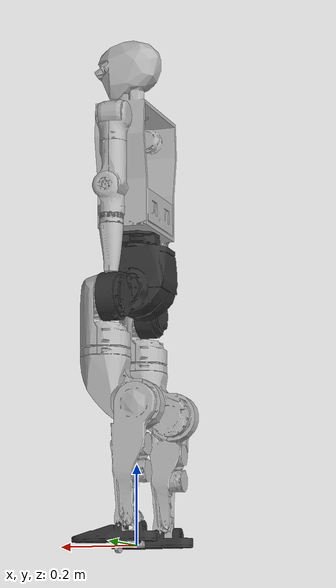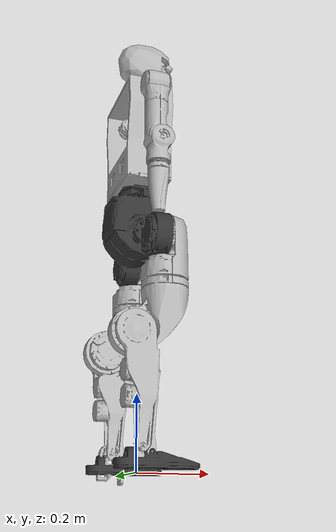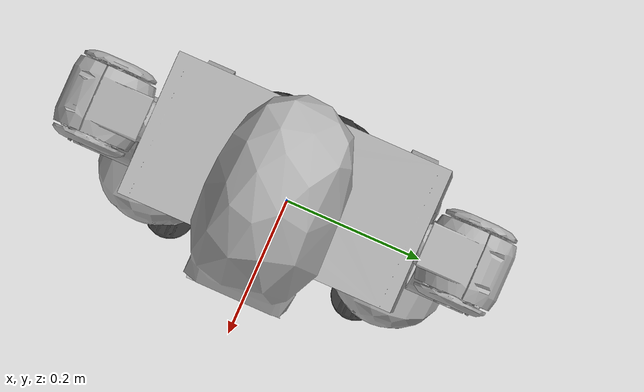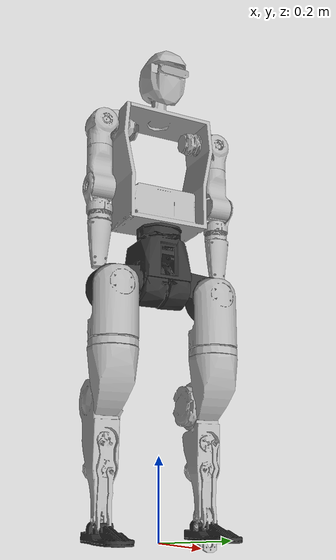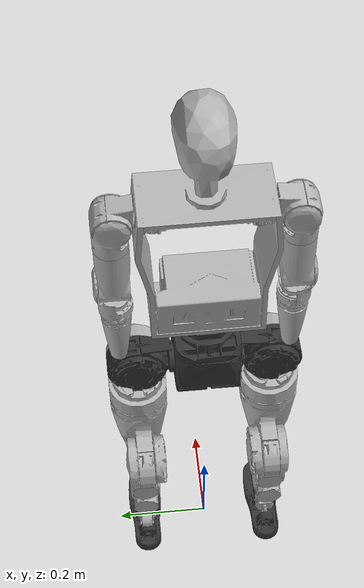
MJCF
<mujoco model="own">
  <!-- Generated from own.urdf by adapting the G1 23DOF URDF->MJCF mapping. -->
  <!-- Visual meshes use compiler meshdir="meshes" and basename STL references from own.urdf. -->
  <!-- Collision geoms are G1-style simplified approximations; tune foot/hand/torso collisions against the actual own meshes. -->
  <!-- IMU sites/sensors are virtual placeholders at inertial centers; D435/Mid360 frames are intentionally not included. -->
  <compiler angle="radian" meshdir="meshes" autolimits="true"/>
  <default>
    <default class="own">
      <default class="visual">
        <geom type="mesh" density="0" material="silver" contype="0" conaffinity="0" group="2"/>
      </default>
      <default class="collision">
        <geom type="capsule" priority="1" condim="6" group="3"/>
        <default class="foot_capsule">
          <geom size="0.01"/>
        </default>
      </default>
      <site rgba="1 0 0 1" group="5"/>
    </default>
  </default>
  <asset>
    <material name="silver" rgba="0.7 0.7 0.7 1"/>
    <material name="black" rgba="0.2 0.2 0.2 1"/>
    <mesh name="pelvis" file="pelvis.STL"/>
    <mesh name="left_hip_pitch_link" file="left_hip_pitch_link.STL"/>
    <mesh name="left_hip_roll_link" file="left_hip_roll_link.STL"/>
    <mesh name="left_hip_yaw_link" file="left_hip_yaw_link.STL"/>
    <mesh name="left_knee_link" file="left_knee_link.STL"/>
    <mesh name="left_ankle_pitch_link" file="left_ankle_pitch_link.STL"/>
    <mesh name="left_ankle_roll_link" file="left_ankle_roll_link.STL"/>
    <mesh name="right_hip_pitch_link" file="right_hip_pitch_link.STL"/>
    <mesh name="right_hip_roll_link" file="right_hip_roll_link.STL"/>
    <mesh name="right_hip_yaw_link" file="right_hip_yaw_link.STL"/>
    <mesh name="right_knee_link" file="right_knee_link.STL"/>
    <mesh name="right_ankle_pitch_link" file="right_ankle_pitch_link.STL"/>
    <mesh name="right_ankle_roll_link" file="right_ankle_roll_link.STL"/>
    <mesh name="torso_link" file="torso_link.STL"/>
    <mesh name="left_shoulder_pitch_link" file="left_shoulder_pitch_link.STL"/>
    <mesh name="left_shoulder_roll_link" file="left_shoulder_roll_link.STL"/>
    <mesh name="left_shoulder_yaw_link" file="left_shoulder_yaw_link.STL"/>
    <mesh name="left_elbow_link" file="left_elbow_link.STL"/>
    <mesh name="left_wrist_roll_link" file="left_wrist_roll_link.STL"/>
    <mesh name="right_shoulder_pitch_link" file="right_shoulder_pitch_link.STL"/>
    <mesh name="right_shoulder_roll_link" file="right_shoulder_roll_link.STL"/>
    <mesh name="right_shoulder_yaw_link" file="right_shoulder_yaw_link.STL"/>
    <mesh name="right_elbow_link" file="right_elbow_link.STL"/>
    <mesh name="right_wrist_roll_link" file="right_wrist_roll_link.STL"/>
  </asset>
  <worldbody>
    <body name="pelvis" pos="0 0 0.7865" childclass="own">
      <light pos="0 0 2" mode="trackcom"/>
      <camera name="tracking" pos="1.734 -1.135 .35" xyaxes="0.552 0.834 -0.000 -0.170 0.112 0.979" mode="trackcom"/>
      <inertial pos="-0.00427076 5.207e-05 0" mass="5.49442153" fullinertia="0.02997507 0.02896373 0.01655055 7.69e-06 -0.00031011 1.557e-05"/>
      <freejoint name="floating_base_joint"/>
      <geom class="visual" mesh="pelvis" material="black"/>
      <geom name="pelvis_collision" class="collision" type="sphere" size="0.075" pos="0 0 -0.08"/>
      <site name="imu_in_pelvis" size="0.01" pos="-0.00427076 5.207e-05 0"/>
      <body name="left_hip_pitch_link" pos="0 0.062 -0.15085">
        <inertial pos="0.01153899 0.07374699 -0.02932665" mass="1.47644302" fullinertia="0.00353864 0.00221931 0.00245227 -3.459e-05 1.793e-05 0.00019398"/>
        <joint name="left_hip_pitch_joint" axis="0 1 0" range="-2.5307 2.8798"/>
        <geom class="visual" mesh="left_hip_pitch_link" material="black"/>
        <body name="left_hip_roll_link" pos="0.0355 0.078 -0.03229">
          <inertial pos="0.00625979 -6.5e-06 -0.0809733" mass="1.62413918" fullinertia="0.00597832 0.00576591 0.00314956 7.2e-07 -0.00100288 1.63e-06"/>
          <joint name="left_hip_roll_joint" axis="1 0 0" range="-0.5236 2.9671"/>
          <geom class="visual" mesh="left_hip_roll_link"/>
          <geom name="left_hip_collision" class="collision" size="0.06" fromto="0.02 0 0 0.02 0 -0.09"/>
          <body name="left_hip_yaw_link" pos="-0.004 0 -0.13335">
            <inertial pos="-0.04042976 -0.00635084 -0.09136575" mass="2.95164923" fullinertia="0.01252565 0.0180434 0.01042354 -0.00083368 -0.00547393 -0.00086964"/>
            <joint name="left_hip_yaw_joint" axis="0 0 1" range="-2.7576 2.7576"/>
            <geom class="visual" mesh="left_hip_yaw_link"/>
            <geom name="left_thigh_collision" class="collision" size="0.055" fromto="0 0 -0.03 -0.075 0 -0.135"/>
            <body name="left_knee_link" pos="-0.085 0.0085 -0.138">
              <inertial pos="0.02654434 -0.00246448 -0.12429241" mass="1.24652783" fullinertia="0.01088731 0.01119644 0.00124056 0.00014242 0.0010584 -0.00076881"/>
              <joint name="left_knee_joint" axis="0 1 0" range="-0.087267 2.8798"/>
              <geom class="visual" mesh="left_knee_link"/>
              <geom name="left_shin_collision" class="collision" size="0.043" fromto="0.01 0 0 0.018 0 -0.23"/>
              <geom name="left_linkage_brace_collision" class="collision" size="0.028" fromto="0.012 0 -0.21 0.018 0 -0.28"/>
              <body name="left_ankle_pitch_link" pos="0.02 -0.0085 -0.28">
                <inertial pos="-0.00689323 0 -0.01226804" mass="0.0911292" fullinertia="1.243e-05 2.297e-05 1.252e-05 0 -3.93e-06 0"/>
                <joint name="left_ankle_pitch_joint" axis="0 1 0" range="-0.87267 0.5236"/>
                <geom class="visual" mesh="left_ankle_pitch_link"/>
                <body name="left_ankle_roll_link" pos="-0.022 0 -0.02">
                  <inertial pos="0.04631624 0 -0.01265419" mass="0.3881275" fullinertia="0.00015892 0.00114243 0.0012145 0 6.735e-05 0"/>
                  <joint name="left_ankle_roll_joint" axis="1 0 0" range="-0.2618 0.2618"/>
                  <geom class="visual" mesh="left_ankle_roll_link" material="black"/>
                  <geom name="left_foot1_collision" class="foot_capsule" fromto="0.14 -0.026 -0.02 0.082 -0.026 -0.02"/>
                  <geom name="left_foot2_collision" class="foot_capsule" fromto="-0.026 -0.018 -0.02 0.155 -0.018 -0.02"/>
                  <geom name="left_foot3_collision" class="foot_capsule" fromto="-0.034 -0.01 -0.02 0.162 -0.01 -0.02"/>
                  <geom name="left_foot4_collision" class="foot_capsule" fromto="-0.036 0 -0.02 0.164 0 -0.02"/>
                  <geom name="left_foot5_collision" class="foot_capsule" fromto="-0.034 0.01 -0.02 0.162 0.01 -0.02"/>
                  <geom name="left_foot6_collision" class="foot_capsule" fromto="-0.026 0.018 -0.02 0.155 0.018 -0.02"/>
                  <geom name="left_foot7_collision" class="foot_capsule" fromto="0.14 0.026 -0.02 0.082 0.026 -0.02"/>
                  <site name="left_foot" rgba="1 0 0 1" pos="0.064 0 -0.03" size="0.01"/>
                </body>
              </body>
            </body>
          </body>
        </body>
      </body>
      <body name="right_hip_pitch_link" pos="0 -0.062 -0.15085">
        <inertial pos="0.0115158 -0.07355332 -0.02937773" mass="1.47720495" fullinertia="0.00354649 0.00222172 0.00245789 4.046e-05 1.542e-05 -0.00019697"/>
        <joint name="right_hip_pitch_joint" axis="0 1 0" range="-2.5307 2.8798"/>
        <geom class="visual" mesh="right_hip_pitch_link" material="black"/>
        <body name="right_hip_roll_link" pos="0.0355 -0.078 -0.03229">
          <inertial pos="0.00551011 -9.21e-06 -0.08517121" mass="1.75165413" fullinertia="0.00644938 0.00626478 0.00331721 4.3e-07 -0.0010739 1.36e-06"/>
          <joint name="right_hip_roll_joint" axis="1 0 0" range="-2.9671 0.5236"/>
          <geom class="visual" mesh="right_hip_roll_link"/>
          <geom name="right_hip_collision" class="collision" size="0.06" fromto="0.02 0 0 0.02 0 -0.09"/>
          <body name="right_hip_yaw_link" pos="-0.004 0 -0.13335">
            <inertial pos="-0.04226427 0.00647868 -0.0951379" mass="2.82481692" fullinertia="0.01145499 0.01675282 0.01004478 0.0007802 -0.00500684 0.00077387"/>
            <joint name="right_hip_yaw_joint" axis="0 0 1" range="-2.7576 2.7576"/>
            <geom class="visual" mesh="right_hip_yaw_link"/>
            <geom name="right_thigh_collision" class="collision" size="0.055" fromto="0 0 -0.03 -0.075 0 -0.135"/>
            <body name="right_knee_link" pos="-0.085 -0.0085 -0.138">
              <inertial pos="0.02651381 0.00259743 -0.12568173" mass="1.25136095" fullinertia="0.01117497 0.01148535 0.00123197 -0.00014617 0.00108361 0.00078141"/>
              <joint name="right_knee_joint" axis="0 1 0" range="-0.087267 2.8798"/>
              <geom class="visual" mesh="right_knee_link"/>
              <geom name="right_shin_collision" class="collision" size="0.043" fromto="0.01 0 0 0.018 0 -0.23"/>
              <geom name="right_linkage_brace_collision" class="collision" size="0.028" fromto="0.012 0 -0.21 0.018 0 -0.28"/>
              <body name="right_ankle_pitch_link" pos="0.02 0.0085 -0.28">
                <inertial pos="-0.00689323 0 -0.01226804" mass="0.0911292" fullinertia="1.243e-05 2.297e-05 1.252e-05 0 -3.93e-06 0"/>
                <joint name="right_ankle_pitch_joint" axis="0 1 0" range="-0.87267 0.5236"/>
                <geom class="visual" mesh="right_ankle_pitch_link"/>
                <body name="right_ankle_roll_link" pos="-0.022 0 -0.02">
                  <inertial pos="0.04557309 0 -0.01256917" mass="0.39470093" fullinertia="0.00015988 0.00115964 0.00123139 0 6.967e-05 0"/>
                  <joint name="right_ankle_roll_joint" axis="1 0 0" range="-0.2618 0.2618"/>
                  <geom class="visual" mesh="right_ankle_roll_link" material="black"/>
                  <geom name="right_foot1_collision" class="foot_capsule" fromto="0.14 -0.026 -0.02 0.082 -0.026 -0.02"/>
                  <geom name="right_foot2_collision" class="foot_capsule" fromto="-0.026 -0.018 -0.02 0.155 -0.018 -0.02"/>
                  <geom name="right_foot3_collision" class="foot_capsule" fromto="-0.034 -0.01 -0.02 0.162 -0.01 -0.02"/>
                  <geom name="right_foot4_collision" class="foot_capsule" fromto="-0.036 0 -0.02 0.164 0 -0.02"/>
                  <geom name="right_foot5_collision" class="foot_capsule" fromto="-0.034 0.01 -0.02 0.162 0.01 -0.02"/>
                  <geom name="right_foot6_collision" class="foot_capsule" fromto="-0.026 0.018 -0.02 0.155 0.018 -0.02"/>
                  <geom name="right_foot7_collision" class="foot_capsule" fromto="0.14 0.026 -0.02 0.082 0.026 -0.02"/>
                  <site name="right_foot" rgba="1 0 0 1" pos="0.064 0 -0.03" size="0.01"/>
                </body>
              </body>
            </body>
          </body>
        </body>
      </body>
      <body name="torso_link" pos="0 0 0">
        <inertial pos="-0.00091691 -0.00103588 0.14102012" mass="6.73175417" fullinertia="0.15414021 0.12132557 0.05071055 0.00010421 -0.00385713 -0.00066113"/>
        <joint name="waist_yaw_joint" axis="0 0 1" range="-2.618 2.618"/>
        <geom class="visual" mesh="torso_link"/>
        <geom name="torso_collision" class="collision" size="0.09" fromto="0.01 0 0.07 0.01 0 0.23"/>
        <geom name="head_collision" class="collision" type="sphere" size="0.06" pos="0 0 0.46"/>
        <site name="imu_in_torso" size="0.01" pos="-0.00091691 -0.00103588 0.14102012"/>
        <body name="left_shoulder_pitch_link" pos="0 0.13097 0.27498" quat="0.9990482317 0.04361915629 0 0">
          <inertial pos="0.00597358 0.0375021 -0.00620298" mass="0.29452386" fullinertia="0.00029402 0.00026597 0.00023752 -6.03e-06 4.33e-06 7.78e-06"/>
          <joint name="left_shoulder_pitch_joint" axis="0 1 0" range="-3.0892 2.6704"/>
          <geom class="visual" mesh="left_shoulder_pitch_link"/>
          <body name="left_shoulder_roll_link" pos="0 0.0385 -0.008" quat="0.9990482317 -0.04361915629 0 0">
            <inertial pos="-0.00109574 0.00446609 -0.03833743" mass="0.22447239" fullinertia="0.00035489 0.00044884 0.00024847 -7.9e-07 9.27e-06 1.143e-05"/>
            <joint name="left_shoulder_roll_joint" axis="1 0 0" range="-1.5882 2.2515"/>
            <geom class="visual" mesh="left_shoulder_roll_link"/>
            <body name="left_shoulder_yaw_link" pos="0 0.003111 -0.0697">
              <inertial pos="0.00194493 0.00422052 -0.0862775" mass="0.39475908" fullinertia="0.00083757 0.00087513 0.00036276 -1.049e-05 4.791e-05 4.735e-05"/>
              <joint name="left_shoulder_yaw_joint" axis="0 0 1" range="-2.618 2.618"/>
              <geom class="visual" mesh="left_shoulder_yaw_link"/>
              <geom name="left_shoulder_yaw_collision" class="collision" size="0.032" fromto="0 0 -0.07 0 0 0.04"/>
              <body name="left_elbow_link" pos="0.0085 0.03225 -0.115">
                <inertial pos="-0.00434204 -0.02156508 -0.04966496" mass="0.16415997" fullinertia="0.00026361 0.00024041 0.0001384 -2.79e-06 -4.38e-06 -7.508e-05"/>
                <joint name="left_elbow_joint" axis="0 1 0" range="-2.618 0.5236"/>
                <geom class="visual" mesh="left_elbow_link"/>
                <geom name="left_elbow_collision" class="collision" size="0.032" fromto="0 0 -0.01 0 0 -0.09"/>
                <body name="left_wrist_roll_link" pos="-0.00379 -0.03225 -0.0992">
                  <inertial pos="-0.00018023 -1.43e-06 -0.04757766" mass="0.14996416" fullinertia="0.00025499 0.00025228 8.025e-05 0 -2.8e-06 0"/>
                  <joint name="left_wrist_roll_joint" axis="0 0 1" range="-1.9722 1.9722"/>
                  <geom class="visual" mesh="left_wrist_roll_link"/>
                  <geom name="left_hand_collision" class="collision" size="0.032" rgba=".2 .6 .2 .2" fromto="0 0 -0.01 0 0 -0.10"/>
                  <site name="left_palm" pos="0 0 -0.08" size="0.01"/>
                </body>
              </body>
            </body>
          </body>
        </body>
        <body name="right_shoulder_pitch_link" pos="0 -0.13097 0.27498" quat="0.9990482317 -0.04361915629 0 0">
          <inertial pos="0.00596986 -0.03749574 -0.00620804" mass="0.29450553" fullinertia="0.000294 0.00026591 0.00023746 6.1e-06 4.26e-06 -7.77e-06"/>
          <joint name="right_shoulder_pitch_joint" axis="0 1 0" range="-3.0892 2.6704"/>
          <geom class="visual" mesh="right_shoulder_pitch_link"/>
          <body name="right_shoulder_roll_link" pos="0 -0.0385 -0.008" quat="0.9990482317 0.04361915629 0 0">
            <inertial pos="-0.00110937 -0.00449137 -0.03827055" mass="0.22446451" fullinertia="0.00035474 0.00044852 0.00024845 8.6e-07 9.46e-06 -1.15e-05"/>
            <joint name="right_shoulder_roll_joint" axis="1 0 0" range="-2.2515 1.5882"/>
            <geom class="visual" mesh="right_shoulder_roll_link"/>
            <body name="right_shoulder_yaw_link" pos="0 -0.003111 -0.0697">
              <inertial pos="0.00194526 -0.00422395 -0.08630086" mass="0.39453213" fullinertia="0.00083598 0.00087374 0.00036249 1.051e-05 4.772e-05 -4.741e-05"/>
              <joint name="right_shoulder_yaw_joint" axis="0 0 1" range="-2.618 2.618"/>
              <geom class="visual" mesh="right_shoulder_yaw_link"/>
              <geom name="right_shoulder_yaw_collision" class="collision" size="0.032" fromto="0 0 -0.07 0 0 0.04"/>
              <body name="right_elbow_link" pos="0.0085 -0.03225 -0.115">
                <inertial pos="-0.0043484 0.02141042 -0.048082" mass="0.162361" fullinertia="0.00025048 0.00022762 0.00013776 2.79e-06 -4.52e-06 7.222e-05"/>
                <joint name="right_elbow_joint" axis="0 1 0" range="-2.618 0.5236"/>
                <geom class="visual" mesh="right_elbow_link"/>
                <geom name="right_elbow_collision" class="collision" size="0.032" fromto="0 0 -0.01 0 0 -0.09"/>
                <body name="right_wrist_roll_link" pos="-0.00379 0.03225 -0.0992">
                  <inertial pos="-0.00018023 -1.43e-06 -0.04757766" mass="0.14996416" fullinertia="0.00025499 0.00025228 8.025e-05 0 -2.8e-06 0"/>
                  <joint name="right_wrist_roll_joint" axis="0 0 1" range="-1.9722 1.9722"/>
                  <geom class="visual" mesh="right_wrist_roll_link"/>
                  <geom name="right_hand_collision" class="collision" size="0.032" rgba=".2 .6 .2 .2" fromto="0 0 -0.01 0 0 -0.10"/>
                  <site name="right_palm" pos="0 0 -0.08" size="0.01"/>
                </body>
              </body>
            </body>
          </body>
        </body>
      </body>
    </body>
  </worldbody>
  <contact>
    <exclude body1="left_elbow_link" body2="left_wrist_roll_link"/>
    <exclude body1="right_elbow_link" body2="right_wrist_roll_link"/>
    <exclude body1="pelvis" body2="right_hip_roll_link"/>
    <exclude body1="pelvis" body2="left_hip_roll_link"/>
  </contact>
  <sensor>
    <gyro name="imu_ang_vel" site="imu_in_pelvis"/>
    <velocimeter name="imu_lin_vel" site="imu_in_pelvis"/>
    <accelerometer name="imu_lin_acc" site="imu_in_pelvis"/>
    <subtreeangmom name="root_angmom" body="pelvis"/>
  </sensor>
</mujoco>
